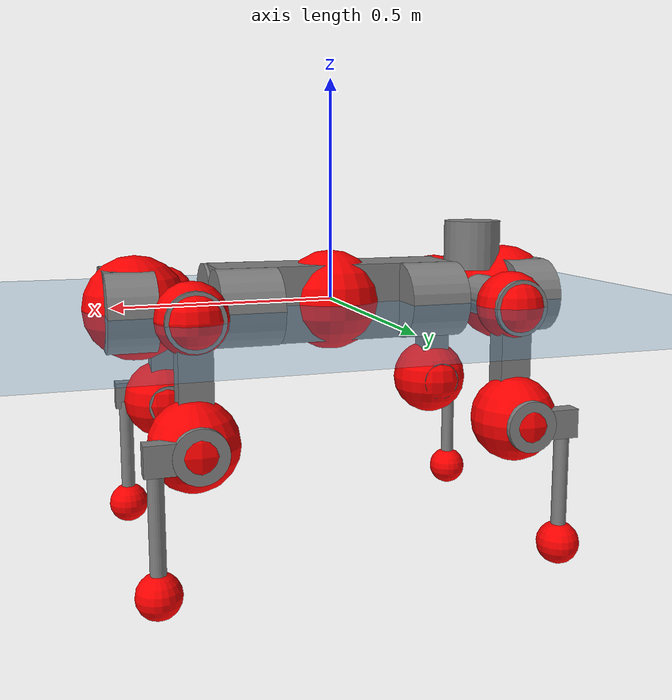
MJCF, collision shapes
<mujoco model="anymal_c">
  <compiler angle="radian" assetdir="assets" balanceinertia="true" inertiafromgeom="false"/>

  <option timestep="0.005" density="1.2" viscosity="2e-05"/>

  <size nkey="1"/>

  <visual>
    <quality shadowsize="8192"/>
    <map shadowclip="0.5"/>
  </visual>

  <default>
    <default class="/">
      <material specular="0" shininess="0.25"/>
      <geom contype="0" conaffinity="0" group="1" solref="-1000 -80"/>
      <site size="0.01 0.005 0.005" group="5"/>
      <general forcelimited="true" forcerange="-80 80" biastype="affine" gainprm="80" biasprm="0 -80 -2"/>
      <default class="anymal_c">
        <joint armature="0.01" damping="0.01" frictionloss="0.1"/>
        <default class="visual">
          <geom type="mesh" group="2"/>
          <default class="visual_zflip"/>
        </default>
        <default class="collision">
          <geom type="cylinder" group="3"/>
          <default class="foot">
            <geom size="0.03 0 0" type="sphere" condim="6" priority="1" friction="0.8 0.02 0.01" solimp="0.015 1 0.03"/>
          </default>
        </default>
      </default>
      <default class="reward_collision_sphere">
        <geom group="5" rgba="1 0 0 1"/>
      </default>
    </default>
  </default>

  <asset>
    <texture type="skybox" colorspace="auto" name="//unnamed_texture_0" builtin="gradient" rgb1="0.95 0.95 0.95" rgb2="0.95 0.95 0.95" width="100" height="600"/>
    <texture type="2d" colorspace="auto" name="texplane" builtin="checker" rgb1="0.345 0.575 0.748" rgb2="0.345 0.575 0.748" markrgb="1 1 1" width="512" height="512"/>
    <texture type="2d" colorspace="linear" name="base" file="base.png"/>
    <texture type="2d" colorspace="linear" name="top_shell" file="top_shell.png"/>
    <texture type="2d" colorspace="linear" name="bottom_shell" file="bottom_shell.png"/>
    <texture type="2d" colorspace="linear" name="remote" file="remote.png"/>
    <texture type="2d" colorspace="linear" name="hatch" file="hatch.png"/>
    <texture type="2d" colorspace="linear" name="handle" file="handle.png"/>
    <texture type="2d" colorspace="linear" name="face" file="face.png"/>
    <texture type="2d" colorspace="linear" name="battery" file="battery.png"/>
    <texture type="2d" colorspace="linear" name="lidar_cage" file="lidar_cage.png"/>
    <texture type="2d" colorspace="linear" name="depth_camera" file="depth_camera.png"/>
    <texture type="2d" colorspace="linear" name="wide_angle_camera" file="wide_angle_camera.png"/>
    <texture type="2d" colorspace="linear" name="lidar" file="lidar.png"/>
    <texture type="2d" colorspace="linear" name="drive" file="drive.png"/>
    <texture type="2d" colorspace="linear" name="hip_l" file="hip_l.png"/>
    <texture type="2d" colorspace="linear" name="shank_l" file="shank_l.png"/>
    <texture type="2d" colorspace="linear" name="foot" file="foot.png"/>
    <texture type="2d" colorspace="linear" name="thigh" file="thigh.png"/>
    <texture type="2d" colorspace="linear" name="shank_r" file="shank_r.png"/>
    <texture type="2d" colorspace="linear" name="hip_r" file="hip_r.png"/>
    <material name="MatPlane" class="/" texture="texplane" texuniform="true" texrepeat="2 2" specular="0.9" shininess="0.5"/>
    <material name="black_plastic" class="/" rgba="0.007 0.007 0.007 1"/>
    <material name="green" class="/" rgba="0.052 0.178 0.033 1"/>
    <material name="red" class="/" rgba="0.178 0.006 0.005 1"/>
    <material name="yellow" class="/" rgba="0.178 0.119 0.006 1"/>
    <material name="lwl" class="/" rgba="0.8 0.8 0.8 1"/>
    <material name="base" class="/" texture="base"/>
    <material name="top_shell" class="/" texture="top_shell"/>
    <material name="bottom_shell" class="/" texture="bottom_shell"/>
    <material name="hip_l" class="/" texture="hip_l"/>
    <material name="thigh" class="/" texture="thigh"/>
    <material name="shank_l" class="/" texture="shank_l"/>
    <material name="foot" class="/" texture="foot"/>
    <material name="hip_r" class="/" texture="hip_r"/>
    <material name="shank" class="/" texture="shank_r"/>
    <material name="hatch" class="/" texture="hatch"/>
    <material name="remote" class="/" texture="remote"/>
    <material name="handle" class="/" texture="handle"/>
    <material name="face" class="/" texture="face"/>
    <material name="depth_camera" class="/" texture="depth_camera"/>
    <material name="wide_angle_camera" class="/" texture="wide_angle_camera"/>
    <material name="battery" class="/" texture="battery"/>
    <material name="lidar_cage" class="/" texture="lidar_cage"/>
    <material name="lidar" class="/" texture="lidar"/>
    <material name="drive" class="/" texture="drive"/>
    <mesh name="base_0" class="/" file="base_0.obj"/>
    <mesh name="base_1" class="/" file="base_1.obj"/>
    <mesh name="base_2" class="/" file="base_2.obj"/>
    <mesh name="base_3" class="/" file="base_3.obj"/>
    <mesh name="base_4" class="/" file="base_4.obj"/>
    <mesh name="base_5" class="/" file="base_5.obj"/>
    <mesh name="top_shell" class="/" file="top_shell.obj"/>
    <mesh name="bottom_shell" class="/" file="bottom_shell.obj"/>
    <mesh name="remote" class="/" file="remote.obj"/>
    <mesh name="handle" class="/" file="handle.obj"/>
    <mesh name="face" class="/" file="face.obj"/>
    <mesh name="wide_angle_camera" class="/" file="wide_angle_camera.obj"/>
    <mesh name="depth_camera" class="/" file="depth_camera.obj"/>
    <mesh name="battery" class="/" file="battery.obj"/>
    <mesh name="lidar_cage" class="/" file="lidar_cage.obj"/>
    <mesh name="lidar" class="/" file="lidar.obj"/>
    <mesh name="drive" class="/" file="drive.obj"/>
    <mesh name="hip_l" class="/" file="hip_l.obj"/>
    <mesh name="thigh" class="/" file="thigh.obj"/>
    <mesh name="shank_l" class="/" file="shank_l.obj"/>
    <mesh name="foot" class="/" file="foot.obj"/>
    <mesh name="hip_r" class="/" file="hip_r.obj"/>
    <mesh name="hatch" class="/" file="hatch.obj"/>
    <mesh name="shank_r" class="/" file="shank_r.obj"/>
  </asset>

  <worldbody>
    <geom name="floor" class="/" size="100 100 0.125" type="plane" group="0" material="MatPlane"/>
    <light name="toplight_shadow" class="/" pos="0 0 5" dir="0.0990148 0.0990148 -0.990148" type="directional" ambient="0.04 0.04 0.04" diffuse="0.55 0.55 0.55" specular="0.12 0.12 0.12"/>
    <light name="toplight_fill" class="/" pos="0 0 5" dir="0.0990148 0.0990148 -0.990148" type="directional" castshadow="false" ambient="0.04 0.04 0.04" diffuse="0.3 0.3 0.3" specular="0.08 0.08 0.08"/>
    <body name="trunk" childclass="anymal_c" pos="0.00157042 0.00232013 -0.000504685" quat="1 -0.000339216 -2.02117e-05 -0.000112358">
      <inertial pos="0.00200999 1.5906e-05 0.0432715" quat="0.500207 0.510494 0.490492 0.498604" mass="16.9057" diaginertia="0.565279 0.574581 0.111177"/>
      <joint name="//unnamed_joint_0" type="free" armature="0" damping="0" frictionloss="0"/>
      <geom name="//unnamed_geom_1" class="visual" material="green" mesh="base_0"/>
      <geom name="//unnamed_geom_2" class="visual" material="yellow" mesh="base_1"/>
      <geom name="//unnamed_geom_3" class="visual" material="red" mesh="base_2"/>
      <geom name="//unnamed_geom_4" class="visual" material="black_plastic" mesh="base_3"/>
      <geom name="//unnamed_geom_5" class="visual" material="lwl" mesh="base_4"/>
      <geom name="//unnamed_geom_6" class="visual" material="base" mesh="base_5"/>
      <geom name="trunk_1" class="collision" size="0.277056 0.0668755 0.0859828" type="box"/>
      <geom name="trunk_2" class="collision" size="0.0859828 0.0692639" pos="0.215141 0.0691889 0" quat="0.707107 0 0.707107 0"/>
      <geom name="trunk_3" class="collision" size="0.0859828 0.0692639" pos="-0.215141 0.0691889 0" quat="0.707107 0 0.707107 0"/>
      <geom name="trunk_4" class="collision" size="0.0859828 0.0692639" pos="0.215141 -0.0691889 0" quat="0.707107 0 0.707107 0"/>
      <geom name="trunk_5" class="collision" size="0.0859828 0.0692639" pos="-0.215141 -0.0691889 0" quat="0.707107 0 0.707107 0"/>
      <geom name="//unnamed_geom_12" class="visual" material="top_shell" mesh="top_shell"/>
      <geom name="//unnamed_geom_13" class="visual" material="bottom_shell" mesh="bottom_shell"/>
      <geom name="//unnamed_geom_14" class="visual" material="remote" mesh="remote"/>
      <geom name="//unnamed_geom_15" class="visual" material="handle" mesh="handle"/>
      <geom name="//unnamed_geom_16" class="visual" pos="0.410005 0 0" quat="1 0 0 0" material="face" mesh="face"/>
      <geom name="trunk_6" class="collision" size="0.0525451 0.0668755 0.0859828" pos="0.464409 0 0" type="box"/>
      <geom name="//unnamed_geom_18" class="collision" size="0.0859828 0.0525451" pos="0.464409 0.0691889 0" quat="0.707107 0 0.707107 0"/>
      <geom name="//unnamed_geom_19" class="collision" size="0.0859828 0.0525451" pos="0.464409 -0.0691889 0" quat="0.707107 0 0.707107 0"/>
      <geom name="//unnamed_geom_20" class="visual" pos="0.45664 0 -0.0251801" quat="0.965926 0 0.258819 0" material="depth_camera" mesh="depth_camera"/>
      <geom name="//unnamed_geom_21" class="visual" pos="0.507437 0 0.0133012" material="wide_angle_camera" mesh="wide_angle_camera"/>
      <geom name="//unnamed_geom_22" class="visual_zflip" pos="-0.410005 0 0" quat="0 0 0 1" material="face" mesh="face"/>
      <geom name="trunk_7" class="collision" size="0.0525451 0.0668755 0.0859828" pos="-0.464409 0 0" quat="0 0 0 1" type="box"/>
      <geom name="//unnamed_geom_24" class="collision" size="0.0859828 0.0525451" pos="-0.464409 -0.0691889 0" quat="0 -0.707107 0 0.707107"/>
      <geom name="//unnamed_geom_25" class="collision" size="0.0859828 0.0525451" pos="-0.464409 0.0691889 0" quat="0 -0.707107 0 0.707107"/>
      <geom name="//unnamed_geom_26" class="visual" pos="-0.45664 0 -0.0251801" quat="0 -0.258819 0 0.965926" material="depth_camera" mesh="depth_camera"/>
      <geom name="//unnamed_geom_27" class="visual_zflip" pos="-0.507437 0 0.0133012" quat="0 0 0 1" material="wide_angle_camera" mesh="wide_angle_camera"/>
      <geom name="//unnamed_geom_28" class="visual" material="battery" mesh="battery"/>
      <geom name="//unnamed_geom_29" class="visual" pos="0 0.0755601 0.0265765" quat="0.683013 -0.183013 0.183013 0.683013" material="depth_camera" mesh="depth_camera"/>
      <geom name="//unnamed_geom_30" class="visual" pos="0 -0.0755601 0.0265765" quat="0.683013 0.183013 0.183013 -0.683013" material="depth_camera" mesh="depth_camera"/>
      <geom name="//unnamed_geom_31" class="visual" pos="-0.360053 0 0.0653066" quat="1 0 0 0" material="lidar_cage" mesh="lidar_cage"/>
      <geom name="trunk_8" class="collision" size="0.0668755 0.0573219" pos="-0.360053 0 0.118618"/>
      <geom name="//unnamed_geom_33" class="visual" pos="-0.360053 -2.92222e-07 0.126348" quat="0.707107 0 0 -0.707107" material="lidar" mesh="lidar"/>
      <geom name="//unnamed_geom_34" class="visual" pos="0.296648 0.102759 1.72307e-09" quat="0.258819 0.965926 0 0" material="drive" mesh="drive"/>
      <geom name="//unnamed_geom_35" class="visual" pos="0.296648 -0.102759 -1.72307e-09" quat="0.258819 -0.965926 0 0" material="drive" mesh="drive"/>
      <geom name="//unnamed_geom_36" class="visual" pos="-0.296648 0.102759 -1.72307e-09" quat="0 0 0.965926 -0.258819" material="drive" mesh="drive"/>
      <geom name="//unnamed_geom_37" class="visual" pos="-0.296648 -0.102759 1.72307e-09" quat="0 0 -0.965926 -0.258819" material="drive" mesh="drive"/>
      <geom name="//unnamed_geom_38" class="visual" pos="0.114742 0 0.0648623" quat="1 0 0 0" material="hatch" mesh="hatch"/>
      <geom name="//unnamed_geom_39" class="reward_collision_sphere" size="0.114644"/>
      <geom name="//unnamed_geom_40" class="reward_collision_sphere" size="0.114644" pos="0.44512 0 0"/>
      <geom name="//unnamed_geom_41" class="reward_collision_sphere" size="0.114644" pos="-0.44512 0 0"/>
      <site name="imu" pos="0.246356 0.03998 0.0325801" size="0.00955365"/>
      <camera name="track" pos="0 -1.97682 0" quat="0.707107 0.707107 0 0" mode="trackcom"/>
      <camera name="ego_camera" pos="0.44512 0 -0.035541" quat="-0.5 -0.5 0.5 0.5"/>
      <body name="LF_HIP" pos="0.297387 0.103527 0.00376934" quat="0.256769 0.966471 -0.000545097 -0.00202438">
        <inertial pos="0.0557101 -0.0131416 -0.00948038" quat="-0.132854 0.706136 -0.130197 0.683206" mass="2.27514" diaginertia="0.00524366 0.00432459 0.00172442"/>
        <joint name="LF_HAA" pos="0 0 0" axis="0.999999 0.000807759 0.000658154" range="-0.807486 0.505704" armature="0.00845712" damping="0.0212287" frictionloss="0.0840912"/>
        <geom name="//unnamed_geom_42" class="visual" pos="0 0.00010136 -1.66483e-05" quat="0.258819 -0.965926 0 0" material="hip_l" mesh="hip_l"/>
        <geom name="//unnamed_geom_43" class="visual" pos="0.0592505 -0.0717493 -0.0406856" quat="0.183013 -0.683013 0.683013 0.183013" material="drive" mesh="drive"/>
        <geom name="//unnamed_geom_44" class="collision" size="0.0477682 0.0668755" pos="0.0592505 -0.0118212 -0.00613527" quat="-0.353553 -0.612372 0.612372 -0.353553"/>
        <body name="LF_THIGH" pos="0.0599681 -0.072457 -0.0414575" quat="0.182867 -0.68288 0.683197 0.182966">
          <inertial pos="0.0302741 0.00456746 -0.21191" quat="0.993687 3.22062e-05 -0.0714669 0.086475" mass="2.62931" diaginertia="0.0298989 0.028526 0.00241966"/>
          <joint name="LF_HFE" pos="0 0 0" axis="0.99998 0.00585779 0.00241586" stiffness="0.00229157" range="-3.15176 3.02455" armature="0.00950796" damping="0.0327475" frictionloss="0.0945669"/>
          <geom name="//unnamed_geom_45" class="visual" pos="1.47988e-05 2.33195e-08 0" quat="0.707107 0 0 -0.707107" material="thigh" mesh="thigh"/>
          <geom name="//unnamed_geom_46" class="collision" size="0.0620987 0.0382146" pos="0.0395663 0 0" quat="0.5 0.5 -0.5 -0.5"/>
          <geom name="//unnamed_geom_47" class="collision" size="0.0358262 0.0286609 0.135006" pos="0.0296747 0 -0.125561" quat="0.707107 0 0 -0.707107" type="box"/>
          <geom name="//unnamed_geom_48" class="visual" pos="0.0992124 0 -0.25323" quat="1 0 0 0" material="drive" mesh="drive"/>
          <geom name="//unnamed_geom_49" class="collision" size="0.0477682 0.0668755" pos="0.0299714 0 -0.25323" quat="0.707107 0 0.707107 0"/>
          <geom name="//unnamed_geom_50" class="reward_collision_sphere" size="0.0764292" pos="0.0247289 0 0"/>
          <body name="LF_SHANK" pos="0.0927505 -0.00521373 -0.254271" quat="1 -9.996e-05 3.80043e-06 0.000194149">
            <inertial pos="0.00335182 -0.0605574 -0.0728697" quat="0.993177 -0.113588 -0.00368868 -0.0261636" mass="0.485103" diaginertia="0.00947669 0.00846185 0.000615231"/>
            <joint name="LF_KFE" pos="0 0 0" axis="0.999985 -0.00174654 0.00518774" stiffness="0.0270324" range="-3.16153 3.21396" armature="0.0100016" damping="0.0073288" frictionloss="0.085028"/>
            <geom name="//unnamed_geom_51" class="visual" pos="4.82557e-06 2.57302e-05 0" quat="0.707107 0 0 -0.707107" material="shank_l" mesh="shank_l"/>
            <geom name="LF_kfe_act" class="collision" size="0.0573219 0.0191073" pos="0.0197831 0 0" quat="0.5 0.5 -0.5 -0.5"/>
            <geom name="//unnamed_geom_53" class="collision" size="0.0549325 0.0322436 0.0181519" pos="0.0197831 -0.0568327 0" quat="0.5 0.5 -0.5 -0.5" type="box"/>
            <geom name="//unnamed_geom_54" class="visual" pos="0.0129085 -0.0869226 -0.300295" quat="0.382683 0 0 -0.92388" material="foot" mesh="foot"/>
            <geom name="LF_calf" class="collision" size="0.0167189 0.134947" pos="0.0129085 -0.0869309 -0.150147" quat="0.707107 0 0 -0.707107"/>
            <geom name="LF_foot" class="foot" size="0.0336802" pos="0.0129085 -0.0869309 -0.280303" quat="0.707107 0 0 -0.707107"/>
            <geom name="//unnamed_geom_57" class="reward_collision_sphere" size="0.0955365" pos="-0.0494578 0 0"/>
            <geom name="//unnamed_geom_58" class="reward_collision_sphere" size="0.0477682" pos="0.0129085 -0.0869309 -0.280303"/>
            <site name="LF_foot" class="foot" pos="0.0129085 -0.0869309 -0.280303" quat="0.707107 0 0 -0.707107" size="0.00955365"/>
          </body>
        </body>
      </body>
      <body name="RF_HIP" pos="0.297577 -0.102113 -0.00473421" quat="0.259145 -0.965838 0.000521401 0.00021478">
        <inertial pos="0.0539517 0.0164482 -0.00733442" quat="0.141903 0.671489 0.14838 0.712004" mass="2.29469" diaginertia="0.00517803 0.0044214 0.00176025"/>
        <joint name="RF_HAA" pos="0 0 0" axis="0.999997 0.00183572 0.0012913" range="-0.527458 0.746743" armature="0.00962965" damping="0.00784745" frictionloss="0.104433"/>
        <geom name="//unnamed_geom_59" class="visual" pos="0 -0.00010136 -1.66483e-05" quat="0.258819 0.965926 0 0" material="hip_r" mesh="hip_r"/>
        <geom name="//unnamed_geom_60" class="visual" pos="0.0592505 0.0717493 -0.0406856" quat="0.183013 0.683013 0.683013 -0.183013" material="drive" mesh="drive"/>
        <geom name="//unnamed_geom_61" class="collision" size="0.0477682 0.0668755" pos="0.0592505 0.0118212 -0.00613527" quat="-0.353553 0.612372 0.612372 0.353553"/>
        <body name="RF_THIGH" pos="0.0601878 0.0682866 -0.0347736" quat="0.182544 0.682963 0.683226 -0.182871">
          <inertial pos="0.0311639 -0.000148705 -0.21311" quat="0.995518 0.00237073 -0.0753706 0.0570773" mass="2.57861" diaginertia="0.0267901 0.0265668 0.00218357"/>
          <joint name="RF_HFE" pos="0 0 0" axis="0.999999 -0.00101103 -0.000577212" stiffness="0.00588002" range="-3.04341 3.08878" armature="0.0106863" damping="0.0138796" frictionloss="0.107059"/>
          <geom name="//unnamed_geom_62" class="visual" pos="1.47988e-05 2.33195e-08 0" quat="0.707107 0 0 -0.707107" material="thigh" mesh="thigh"/>
          <geom name="//unnamed_geom_63" class="collision" size="0.0620987 0.0382146" pos="0.0395663 0 0" quat="0.5 0.5 0.5 0.5"/>
          <geom name="//unnamed_geom_64" class="collision" size="0.0358262 0.0286609 0.135006" pos="0.0296747 0 -0.125561" quat="0.707107 0 0 0.707107" type="box"/>
          <geom name="//unnamed_geom_65" class="visual" pos="0.0992124 0 -0.25323" quat="1 0 0 0" material="drive" mesh="drive"/>
          <geom name="//unnamed_geom_66" class="collision" size="0.0477682 0.0668755" pos="0.0299714 0 -0.25323" quat="0.707107 0 0.707107 0"/>
          <geom name="//unnamed_geom_67" class="reward_collision_sphere" size="0.0764292" pos="0.0247289 0 0"/>
          <body name="RF_SHANK" pos="0.0974893 0.00206739 -0.25312" quat="1 -0.000287638 0.000271408 -0.000109668">
            <inertial pos="0.00817804 0.0613123 -0.078311" quat="0.992895 0.116147 -0.00179545 0.0258202" mass="0.571852" diaginertia="0.0105985 0.00871563 0.000706992"/>
            <joint name="RF_KFE" pos="0 0 0" axis="1 0.000150143 -4.81602e-05" range="-3.0977 3.13338" armature="0.00852355" damping="0.0098469" frictionloss="0.0962348"/>
            <geom name="//unnamed_geom_68" class="visual" pos="4.82555e-06 -2.57301e-05 0" quat="0.707107 0 0 0.707107" material="shank" mesh="shank_r"/>
            <geom name="RF_kfe_act" class="collision" size="0.0573219 0.0191073" pos="0.0197831 0 0" quat="0.5 0.5 0.5 0.5"/>
            <geom name="//unnamed_geom_70" class="collision" size="0.0549325 0.0322436 0.0181519" pos="0.0197831 0.0568327 0" quat="0.5 0.5 0.5 0.5" type="box"/>
            <geom name="//unnamed_geom_71" class="visual" pos="0.0129085 0.0869226 -0.300295" quat="0.382683 0 0 0.92388" material="foot" mesh="foot"/>
            <geom name="RF_calf" class="collision" size="0.0167189 0.134947" pos="0.0129085 0.0869309 -0.150147" quat="0.707107 0 0 0.707107"/>
            <geom name="RF_foot" class="foot" size="0.0304296" pos="0.0129085 0.0869309 -0.280303" quat="0.707107 0 0 0.707107"/>
            <geom name="//unnamed_geom_74" class="reward_collision_sphere" size="0.0955365" pos="-0.0494578 0 0"/>
            <geom name="//unnamed_geom_75" class="reward_collision_sphere" size="0.0477682" pos="0.0129085 0.0869309 -0.280303"/>
            <site name="RF_foot" class="foot" pos="0.0129085 0.0869309 -0.280303" quat="0.707107 0 0 0.707107" size="0.00955365"/>
          </body>
        </body>
      </body>
      <body name="LH_HIP" pos="-0.298096 0.102251 0.00440869" quat="0.000455623 0.000177575 0.965888 -0.25896">
        <inertial pos="0.0558388 0.0129955 -0.00311478" quat="0.136095 0.686374 0.121986 0.70391" mass="2.23126" diaginertia="0.0051583 0.00457674 0.00180974"/>
        <joint name="LH_HAA" pos="0 0 0" axis="1 -0.000394912 -0.000647067" stiffness="0.00651588" range="-0.609909 0.636978" armature="0.00960212" damping="0.00920571" frictionloss="0.0756879"/>
        <geom name="//unnamed_geom_76" class="visual" pos="0 -0.00010136 -1.66483e-05" quat="-0.258819 -0.965926 0 0" material="hip_r" mesh="hip_r"/>
        <geom name="//unnamed_geom_77" class="visual" pos="0.0592505 0.0717493 -0.0406856" quat="0.183013 0.683013 0.683013 -0.183013" material="drive" mesh="drive"/>
        <geom name="//unnamed_geom_78" class="collision" size="0.0477682 0.0668755" pos="0.0592505 0.0118212 -0.00613527" quat="-0.353553 0.612372 0.612372 0.353553"/>
        <body name="LH_THIGH" pos="0.0590067 0.07049 -0.0338892" quat="0.182996 0.683033 0.682991 -0.183034">
          <inertial pos="0.0343593 0.00212983 -0.211992" quat="0.994633 0.00544095 -0.0722864 0.0738241" mass="2.63581" diaginertia="0.0308693 0.0288263 0.00248134"/>
          <joint name="LH_HFE" pos="0 0 0" axis="0.999814 0.0152649 0.0117785" range="-3.05796 3.08886" armature="0.0103997" damping="0.0173571" frictionloss="0.0957484"/>
          <geom name="//unnamed_geom_79" class="visual" pos="1.47988e-05 2.33195e-08 0" quat="0.707107 0 0 -0.707107" material="thigh" mesh="thigh"/>
          <geom name="//unnamed_geom_80" class="collision" size="0.0620987 0.0382146" pos="0.0395663 0 0" quat="0.5 0.5 -0.5 -0.5"/>
          <geom name="//unnamed_geom_81" class="collision" size="0.0358262 0.0286609 0.135006" pos="0.0296747 0 -0.125561" quat="0.707107 0 0 -0.707107" type="box"/>
          <geom name="//unnamed_geom_82" class="visual" pos="0.0992124 0 -0.25323" quat="1 0 0 0" material="drive" mesh="drive"/>
          <geom name="//unnamed_geom_83" class="collision" size="0.0477682 0.0668755" pos="0.0299714 0 -0.25323" quat="0.707107 0 0.707107 0"/>
          <geom name="//unnamed_geom_84" class="reward_collision_sphere" size="0.0764292" pos="0.0247289 0 0"/>
          <body name="LH_SHANK" pos="0.0997559 0.00110844 -0.251511" quat="0.999999 0.000725571 0.000804436 0.000380988">
            <inertial pos="0.00536149 0.0608934 -0.0727408" quat="0.991634 0.125872 0.00726475 0.0276722" mass="0.520459" diaginertia="0.00962308 0.00878071 0.000599813"/>
            <joint name="LH_KFE" pos="0 0 0" axis="0.999997 0.00207107 -0.00156703" stiffness="0.0310223" range="-3.10561 3.13545" armature="0.0103767" damping="0.021469" frictionloss="0.0944874"/>
            <geom name="//unnamed_geom_85" class="visual" pos="4.82555e-06 -2.57301e-05 0" quat="-0.707107 0 0 -0.707107" material="shank" mesh="shank_r"/>
            <geom name="LH_kfe_act" class="collision" size="0.0573219 0.0191073" pos="0.0197831 0 0" quat="0.5 0.5 -0.5 -0.5"/>
            <geom name="//unnamed_geom_87" class="collision" size="0.0549325 0.0322436 0.0181519" pos="0.0197831 0.0568327 0" quat="0.5 0.5 -0.5 -0.5" type="box"/>
            <geom name="//unnamed_geom_88" class="visual" pos="0.0129085 0.0869226 -0.300295" quat="-0.382683 0 0 -0.92388" material="foot" mesh="foot"/>
            <geom name="LH_calf" class="collision" size="0.0167189 0.134947" pos="0.0129085 0.0869309 -0.150147" quat="0.707107 0 0 -0.707107"/>
            <geom name="LH_foot" class="foot" size="0.0305894" pos="0.0129085 0.0869309 -0.280303" quat="0.707107 0 0 -0.707107"/>
            <geom name="//unnamed_geom_91" class="reward_collision_sphere" size="0.0955365" pos="-0.0494578 0 0"/>
            <geom name="//unnamed_geom_92" class="reward_collision_sphere" size="0.0477682" pos="0.0129085 0.0869309 -0.280303"/>
            <site name="LH_foot" class="foot" pos="0.0129085 0.0869309 -0.280303" quat="0.707107 0 0 -0.707107" size="0.00955365"/>
          </body>
        </body>
      </body>
      <body name="RH_HIP" pos="-0.296741 -0.105752 -0.00218113" quat="0.000620412 0.000226913 -0.965833 -0.259163">
        <inertial pos="0.0561918 -0.019107 -0.00589959" quat="-0.127688 0.709902 -0.134992 0.679347" mass="2.63408" diaginertia="0.00576466 0.00482117 0.00195509"/>
        <joint name="RH_HAA" pos="0 0 0" axis="0.999965 0.004868 0.00685159" range="-0.690859 0.545835" armature="0.00944339" damping="0.0244244" frictionloss="0.103726"/>
        <geom name="//unnamed_geom_93" class="visual" pos="0 0.00010136 -1.66483e-05" quat="-0.258819 0.965926 0 0" material="hip_l" mesh="hip_l"/>
        <geom name="//unnamed_geom_94" class="visual" pos="0.0592505 -0.0717493 -0.0406856" quat="-0.183013 0.683013 -0.683013 -0.183013" material="drive" mesh="drive"/>
        <geom name="//unnamed_geom_95" class="collision" size="0.0477682 0.0668755" pos="0.0592505 -0.0118212 -0.00613527" quat="0.353553 0.612372 -0.612372 0.353553"/>
        <body name="RH_THIGH" pos="0.0617586 -0.0732961 -0.0419805" quat="-0.182688 0.683133 -0.682926 -0.183215">
          <inertial pos="0.0311441 -0.00159535 -0.218568" quat="0.993147 -0.00341479 -0.0815076 0.0836938" mass="2.87464" diaginertia="0.0300418 0.0285354 0.0023193"/>
          <joint name="RH_HFE" pos="0 0 0" axis="0.999949 0.00572422 0.00828929" range="-3.04358 3.05942" armature="0.0097124" damping="0.00802462" frictionloss="0.109925"/>
          <geom name="//unnamed_geom_96" class="visual" pos="1.47988e-05 2.33195e-08 0" quat="0.707107 0 0 -0.707107" material="thigh" mesh="thigh"/>
          <geom name="//unnamed_geom_97" class="collision" size="0.0620987 0.0382146" pos="0.0395663 0 0" quat="0.5 0.5 0.5 0.5"/>
          <geom name="//unnamed_geom_98" class="collision" size="0.0358262 0.0286609 0.135006" pos="0.0296747 0 -0.125561" quat="0.707107 0 0 0.707107" type="box"/>
          <geom name="//unnamed_geom_99" class="visual" pos="0.0992124 0 -0.25323" quat="1 0 0 0" material="drive" mesh="drive"/>
          <geom name="//unnamed_geom_100" class="collision" size="0.0477682 0.0668755" pos="0.0299714 0 -0.25323" quat="0.707107 0 0.707107 0"/>
          <geom name="//unnamed_geom_101" class="reward_collision_sphere" size="0.0764292" pos="0.0247289 0 0"/>
          <body name="RH_SHANK" pos="0.0941945 0.000576973 -0.254227" quat="0.999999 -0.00104215 -0.000766463 0.000373813">
            <inertial pos="0.00728949 -0.0606337 -0.0708879" quat="0.993376 -0.109966 -0.00866995 -0.0322055" mass="0.533239" diaginertia="0.00945836 0.00863591 0.000639328"/>
            <joint name="RH_KFE" pos="0 0 0" axis="1 0.000442217 0.000756116" range="-3.13174 3.13492" armature="0.00917487" damping="0.0337691" frictionloss="0.09565"/>
            <geom name="//unnamed_geom_102" class="visual" pos="4.82557e-06 2.57302e-05 0" quat="0.707107 0 0 -0.707107" material="shank_l" mesh="shank_l"/>
            <geom name="RH_kfe_act" class="collision" size="0.0573219 0.0191073" pos="0.0197831 0 0" quat="0.5 0.5 0.5 0.5"/>
            <geom name="//unnamed_geom_104" class="collision" size="0.0549325 0.0322436 0.0181519" pos="0.0197831 -0.0568327 0" quat="0.5 0.5 0.5 0.5" type="box"/>
            <geom name="//unnamed_geom_105" class="visual" pos="0.0129085 -0.0869226 -0.300295" quat="0.382683 0 0 -0.92388" material="foot" mesh="foot"/>
            <geom name="RH_calf" class="collision" size="0.0167189 0.134947" pos="0.0129085 -0.0869309 -0.150147" quat="0.707107 0 0 0.707107"/>
            <geom name="RH_foot" class="foot" size="0.0224047" pos="0.0129085 -0.0869309 -0.280303" quat="0.707107 0 0 0.707107"/>
            <geom name="//unnamed_geom_108" class="reward_collision_sphere" size="0.0955365" pos="-0.0494578 0 0"/>
            <geom name="//unnamed_geom_109" class="reward_collision_sphere" size="0.0477682" pos="0.0129085 -0.0869309 -0.280303"/>
            <site name="RH_foot" class="foot" pos="0.0129085 -0.0869309 -0.280303" quat="0.707107 0 0 0.707107" size="0.00955365"/>
          </body>
        </body>
      </body>
    </body>
  </worldbody>

  <contact>
    <pair class="/" geom1="floor" geom2="LF_foot" name="//unnamed_contact_0"/>
    <pair class="/" geom1="floor" geom2="RF_foot" name="//unnamed_contact_1"/>
    <pair class="/" geom1="floor" geom2="LH_foot" name="//unnamed_contact_2"/>
    <pair class="/" geom1="floor" geom2="RH_foot" name="//unnamed_contact_3"/>
  </contact>

  <actuator>
    <general name="LF_HAA" class="/" joint="LF_HAA" forcerange="-85.7003 85.7003" gainprm="72.3349" biasprm="0 -72.3349 -1.72032"/>
    <general name="LF_HFE" class="/" joint="LF_HFE" forcerange="-66.8919 66.8919" gainprm="72.3349" biasprm="0 -72.3349 -1.72032"/>
    <general name="LF_KFE" class="/" joint="LF_KFE" forcerange="-88.2332 88.2332" gainprm="72.3349" biasprm="0 -72.3349 -1.72032"/>
    <general name="RF_HAA" class="/" joint="RF_HAA" forcerange="-84.1191 84.1191" gainprm="72.3349" biasprm="0 -72.3349 -1.72032"/>
    <general name="RF_HFE" class="/" joint="RF_HFE" forcerange="-75.8022 75.8022" gainprm="72.3349" biasprm="0 -72.3349 -1.72032"/>
    <general name="RF_KFE" class="/" joint="RF_KFE" forcerange="-57.1232 57.1232" gainprm="72.3349" biasprm="0 -72.3349 -1.72032"/>
    <general name="LH_HAA" class="/" joint="LH_HAA" forcerange="-63.6284 63.6284" gainprm="72.3349" biasprm="0 -72.3349 -1.72032"/>
    <general name="LH_HFE" class="/" joint="LH_HFE" forcerange="-78.746 78.746" gainprm="72.3349" biasprm="0 -72.3349 -1.72032"/>
    <general name="LH_KFE" class="/" joint="LH_KFE" forcerange="-85.1369 85.1369" gainprm="72.3349" biasprm="0 -72.3349 -1.72032"/>
    <general name="RH_HAA" class="/" joint="RH_HAA" forcerange="-79.053 79.053" gainprm="72.3349" biasprm="0 -72.3349 -1.72032"/>
    <general name="RH_HFE" class="/" joint="RH_HFE" forcerange="-93.6893 93.6893" gainprm="72.3349" biasprm="0 -72.3349 -1.72032"/>
    <general name="RH_KFE" class="/" joint="RH_KFE" forcerange="-84.2763 84.2763" gainprm="72.3349" biasprm="0 -72.3349 -1.72032"/>
  </actuator>

  <sensor>
    <gyro site="imu" name="imu_angular_velocity"/>
    <velocimeter site="imu" name="imu_linear_velocity"/>
    <framelinvel objtype="site" objname="LF_foot" name="LF_foot_global_linear_velocity"/>
    <framelinvel objtype="site" objname="RF_foot" name="RF_foot_global_linear_velocity"/>
    <framelinvel objtype="site" objname="LH_foot" name="LH_foot_global_linear_velocity"/>
    <framelinvel objtype="site" objname="RH_foot" name="RH_foot_global_linear_velocity"/>
  </sensor>

  <keyframe>
    <key name="home" qpos="0 0 0.55 1 0 0 0 0 0.4 -0.8 0 -0.4 0.8 0 -0.4 0.8 0 0.4 -0.8"/>
  </keyframe>
</mujoco>
